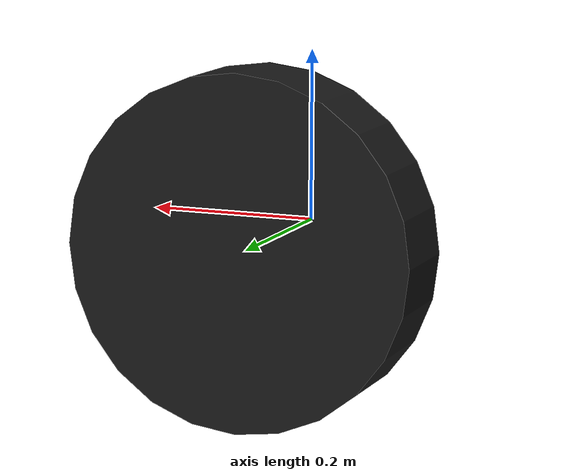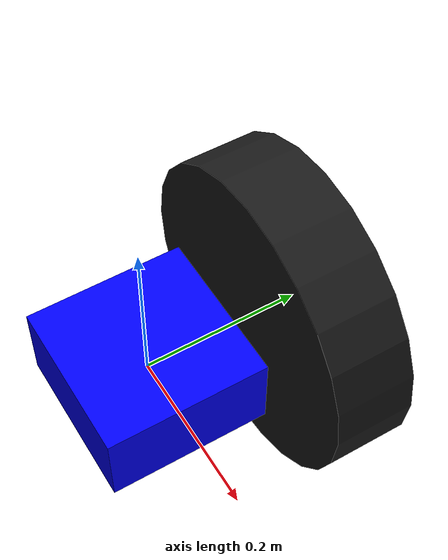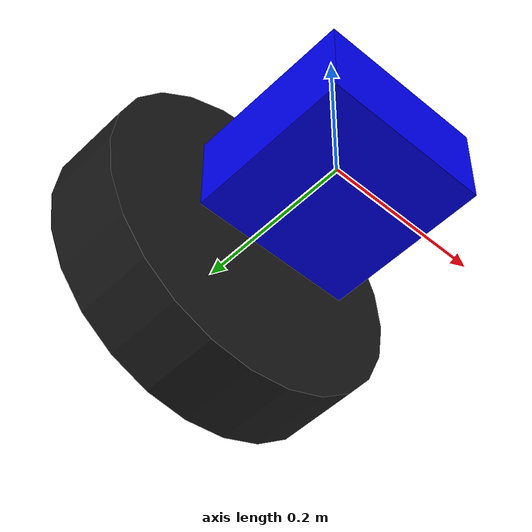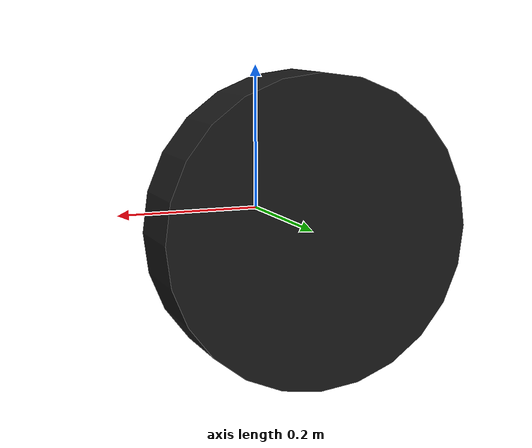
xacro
<?xml version="1.0"?>
<robot name="dummy" xmlns:xacro="http://ros.org/wiki/xacro">
  <xacro:include filename="$(find cybergear_control)/description/ros2_control/1dof.ros2_control.urdf.xacro"/>
  <!-- Base Link -->
  <link name="base_link">
    <visual>
      <geometry>
        <box size="0.2 0.2 0.1" />
      </geometry>
      <material name="Blue">
        <color rgba="0 0 1 1" />
      </material>
    </visual>
    <collision>
      <geometry>
        <box size="0.2 0.2 0.1" />
      </geometry>
    </collision>
  </link>

  <!-- Wheel Link -->
  <link name="wheel_link">
    <visual>
      <geometry>
        <cylinder length="0.1" radius="0.2" />
      </geometry>
      <material name="Black">
        <color rgba="0.1 0.1 0.1 1" />
      </material>
    </visual>
    <collision>
      <geometry>
        <cylinder length="0.1" radius="0.18" />
      </geometry>
    </collision>
    <inertial>
      <mass value="0.5" />
      <inertia ixx="0.01" ixy="0.0" ixz="0.0" iyy="0.01" iyz="0.0" izz="0.005" />
    </inertial>
  </link>

  <!-- Rotational Joint -->
  <joint name="wheel_joint" type="continuous">
    <parent link="base_link"/>
    <child link="wheel_link"/>
    <origin xyz="0 0.18 0" rpy="1.5708 0 0"/>
    <axis xyz="0 0 1"/>
  </joint>

  <xacro:single_dof_ros2_control name="CybergearMotorWheelJoint1"/>

</robot>
